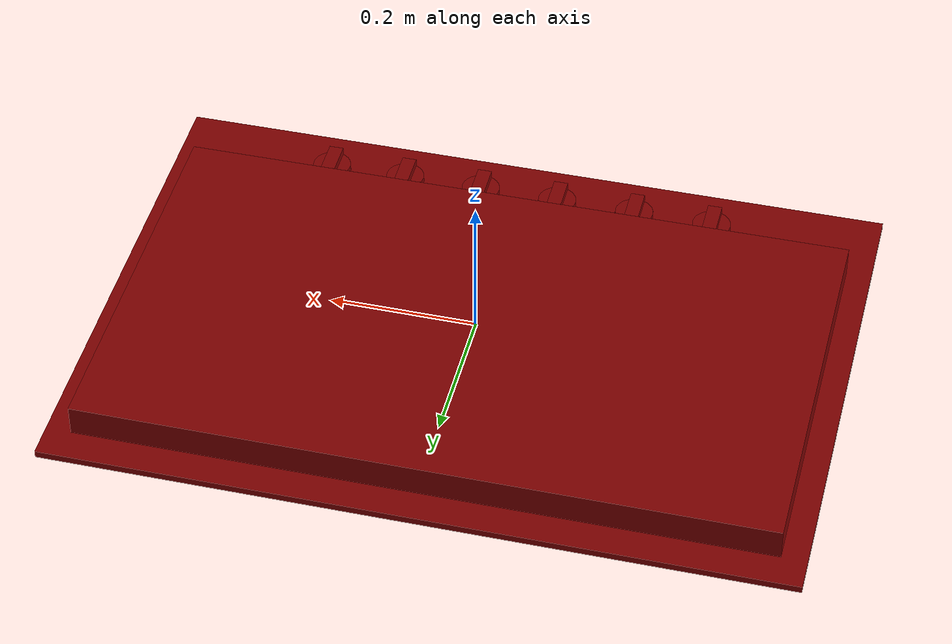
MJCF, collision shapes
<mujoco model="model">
  <compiler angle="radian"/>
  <asset>
    <texture type="2d" name="image0" file="visuals/image0.png"/>
    <material name="6_burners_gas_hob" texture="image0" specular="0.5" shininess="0.25"/>
    <mesh file="visuals/model_0.obj" name="model_0_vis" scale="1 1 1"/>
    <mesh file="visuals/knob_rear_center_0.obj" name="knob_rear_center_0_vis" scale="1 1 1"/>
    <mesh file="visuals/knob_front_center_0.obj" name="knob_front_center_0_vis" scale="1 1 1"/>
    <mesh file="visuals/knob_rear_right_0.obj" name="knob_rear_right_0_vis" scale="1 1 1"/>
    <mesh file="visuals/knob_front_left_0.obj" name="knob_front_left_0_vis" scale="1 1 1"/>
    <mesh file="visuals/knob_front_right_0.obj" name="knob_front_right_0_vis" scale="1 1 1"/>
    <mesh file="visuals/knob_rear_left_0.obj" name="knob_rear_left_0_vis" scale="1 1 1"/>
  </asset>
  <default>
    <default class="visual">
      <geom conaffinity="0" contype="0" group="1" type="mesh"/>
    </default>
    <default class="collision">
      <geom group="0" rgba="0.5 0 0 0.5"/>
    </default>
    <default class="region">
      <geom group="1" conaffinity="0" contype="0" rgba="0 1 0 0"/>
    </default>
  </default>
  <worldbody>
    <body>
      <body name="object">
        <geom solimp="0.998 0.998 0.001" solref="0.001 1" density="100" friction="0.95 0.3 0.1" type="mesh" mesh="model_0_vis" material="6_burners_gas_hob" class="visual"/>
        <site name="burner_on_front_left" pos="-0.296 -0.105 -0.002" size="0.045 0.004" rgba="0.3 0.4 1 0.5" type="cylinder"/>
        <site name="burner_on_front_center" pos="0 -0.103 0" size="0.10 0.004" rgba="0.3 0.4 1 0.5" type="cylinder"/>
        <site name="burner_on_front_right" pos="0.304 -0.104 -0.002" size="0.045 0.004" rgba="0.3 0.4 1 0.5" type="cylinder"/>
        <site name="burner_on_rear_left" pos="-0.296 0.168 -0.002" size="0.08 0.004" rgba="0.3 0.4 1 0.5" type="cylinder"/>
        <site name="burner_on_rear_center" pos="0 0.172 -0.001" size="0.06 0.004" rgba="0.3 0.4 1 0.5" type="cylinder"/>
        <site name="burner_on_rear_right" pos="0.304 0.168 -0.002" size="0.08 0.004" rgba="0.3 0.4 1 0.5" type="cylinder"/>
        <site name="burner_front_left_place_site" pos="-0.296 -0.105 0.027" size="0.045 0.001" rgba="0.3 0.4 1 0" type="cylinder"/>
        <site name="burner_front_center_place_site" pos="0 -0.103 0.027" size="0.10 0.001" rgba="0.3 0.4 1 0" type="cylinder"/>
        <site name="burner_front_right_place_site" pos="0.304 -0.104 0.027" size="0.045 0.001" rgba="0.3 0.4 1 0" type="cylinder"/>
        <site name="burner_rear_left_place_site" pos="-0.296 0.168 0.027" size="0.08 0.001" rgba="0.3 0.4 1 0" type="cylinder"/>
        <site name="burner_rear_center_place_site" pos="0 0.172 0.027" size="0.06 0.001" rgba="0.3 0.4 1 0" type="cylinder"/>
        <site name="burner_rear_right_place_site" pos="0.304 0.168 0.027" size="0.08 0.001" rgba="0.3 0.4 1 0" type="cylinder"/>
        <!-- Main -->
        <geom class="collision" type="box" pos="0 0 -0.021" size="0.5 0.35 0.005"/>
        <!-- Grill -->
        <geom class="collision" type="box" pos="0 0.035 0.005" size="0.466 0.271 0.022"/>
        <body name="knob_rear_center">
          <joint name="knob_rear_center_joint" type="hinge" pos="-0.16 -0.2803 -0.01" damping="1" armature="2"/>
          <geom solimp="0.998 0.998 0.001" solref="0.001 1" density="100" friction="0.95 0.3 0.1" type="mesh" mesh="knob_rear_center_0_vis" material="6_burners_gas_hob" class="visual"/>
          <geom class="collision" type="cylinder" pos="-0.16 -0.2803 -0.01" size="0.0265 0.006 0" friction="100 0.001 0.0001"/>
          <geom class="collision" type="box" pos="-0.16 -0.28 0.0013" size="0.0098 0.0253 0.0055" friction="100 0.001 0.0001" name="knob_rear_center_main"/>
        </body>
        <body name="knob_front_center">
          <joint name="knob_front_center_joint" type="hinge" pos="0.1698 -0.2803 -0.01" damping="1" armature="2"/>
          <geom solimp="0.998 0.998 0.001" solref="0.001 1" density="100" friction="0.95 0.3 0.1" type="mesh" mesh="knob_front_center_0_vis" material="6_burners_gas_hob" class="visual"/>
          <geom class="collision" type="cylinder" pos="0.1698 -0.2803 -0.01" size="0.0265 0.006 0" friction="100 0.001 0.0001"/>
          <geom class="collision" type="box" pos="0.1698 -0.28 0.0013" size="0.0098 0.0253 0.0055" friction="100 0.001 0.0001" name="knob_front_center_main"/>
        </body>
        <body name="knob_rear_right">
          <joint name="knob_rear_right_joint" type="hinge" pos="-0.05 -0.2803 -0.01" damping="1" armature="2"/>
          <geom solimp="0.998 0.998 0.001" solref="0.001 1" density="100" friction="0.95 0.3 0.1" type="mesh" mesh="knob_rear_right_0_vis" material="6_burners_gas_hob" class="visual"/>
          <geom class="collision" type="cylinder" pos="-0.05 -0.2803 -0.01" size="0.0265 0.006 0" friction="100 0.001 0.0001"/>
          <geom class="collision" type="box" pos="-0.05 -0.28 0.0013" size="0.0098 0.0253 0.0055" friction="100 0.001 0.0001" name="knob_rear_right_main"/>
        </body>
        <body name="knob_front_left">
          <joint name="knob_front_left_joint" type="hinge" pos="0.06 -0.2803 -0.01" damping="1" armature="2"/>
          <geom solimp="0.998 0.998 0.001" solref="0.001 1" density="100" friction="0.95 0.3 0.1" type="mesh" mesh="knob_front_left_0_vis" material="6_burners_gas_hob" class="visual"/>
          <geom class="collision" type="cylinder" pos="0.06 -0.2803 -0.01" size="0.0265 0.006 0" friction="100 0.001 0.0001"/>
          <geom class="collision" type="box" pos="0.06 -0.28 0.0013" size="0.0098 0.0253 0.0055" friction="100 0.001 0.0001" name="knob_front_left_main"/>
        </body>
        <body name="knob_front_right">
          <joint name="knob_front_right_joint" type="hinge" pos="0.277 -0.2803 -0.01" damping="1" armature="2"/>
          <geom solimp="0.998 0.998 0.001" solref="0.001 1" density="100" friction="0.95 0.3 0.1" type="mesh" mesh="knob_front_right_0_vis" material="6_burners_gas_hob" class="visual"/>
          <geom class="collision" type="cylinder" pos="0.277 -0.2803 -0.01" size="0.0265 0.006 0" friction="100 0.001 0.0001"/>
          <geom class="collision" type="box" pos="0.277 -0.28 0.0013" size="0.0098 0.0253 0.0055" friction="100 0.001 0.0001" name="knob_front_right_main"/>
        </body>
        <body name="knob_rear_left">
          <joint name="knob_rear_left_joint" type="hinge" pos="-0.2696 -0.2803 -0.01" damping="1" armature="2"/>
          <geom solimp="0.998 0.998 0.001" solref="0.001 1" density="100" friction="0.95 0.3 0.1" type="mesh" mesh="knob_rear_left_0_vis" material="6_burners_gas_hob" class="visual"/>
          <geom class="collision" type="cylinder" pos="-0.2696 -0.2803 -0.01" size="0.0265 0.006 0" friction="100 0.001 0.001"/>
          <geom class="collision" type="box" pos="-0.2696 -0.28 0.0013" size="0.0098 0.0253 0.0055" friction="100 0.001 0.001" name="knob_rear_left_main"/>
        </body>
        <!-- exterior bounding box points -->
        <geom class="region" name="reg_main" type="box" pos="0.0 0.0 -0.0275" size="0.5 0.34 0.0024999999999999988"/>
      </body>
    </body>
  </worldbody>
</mujoco>
